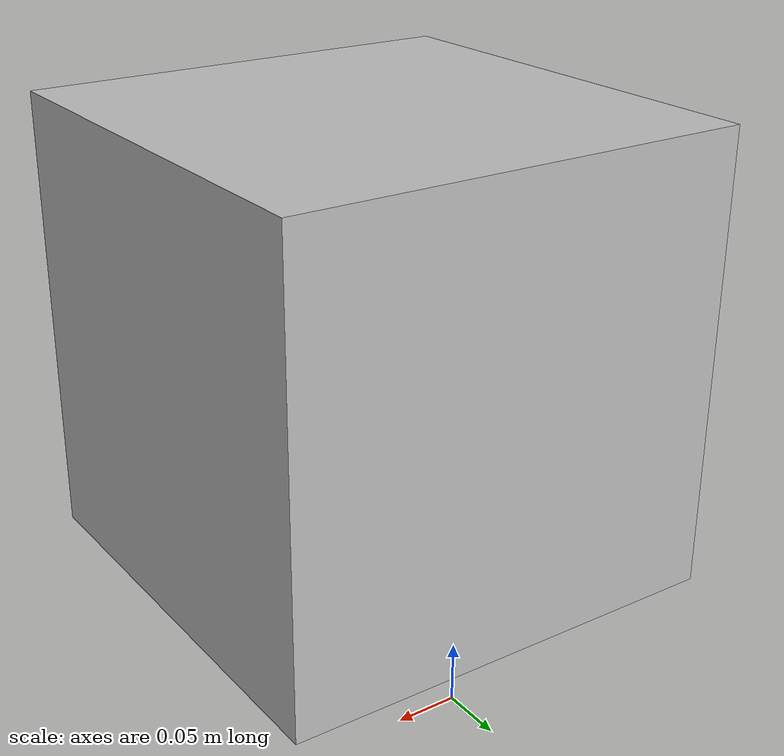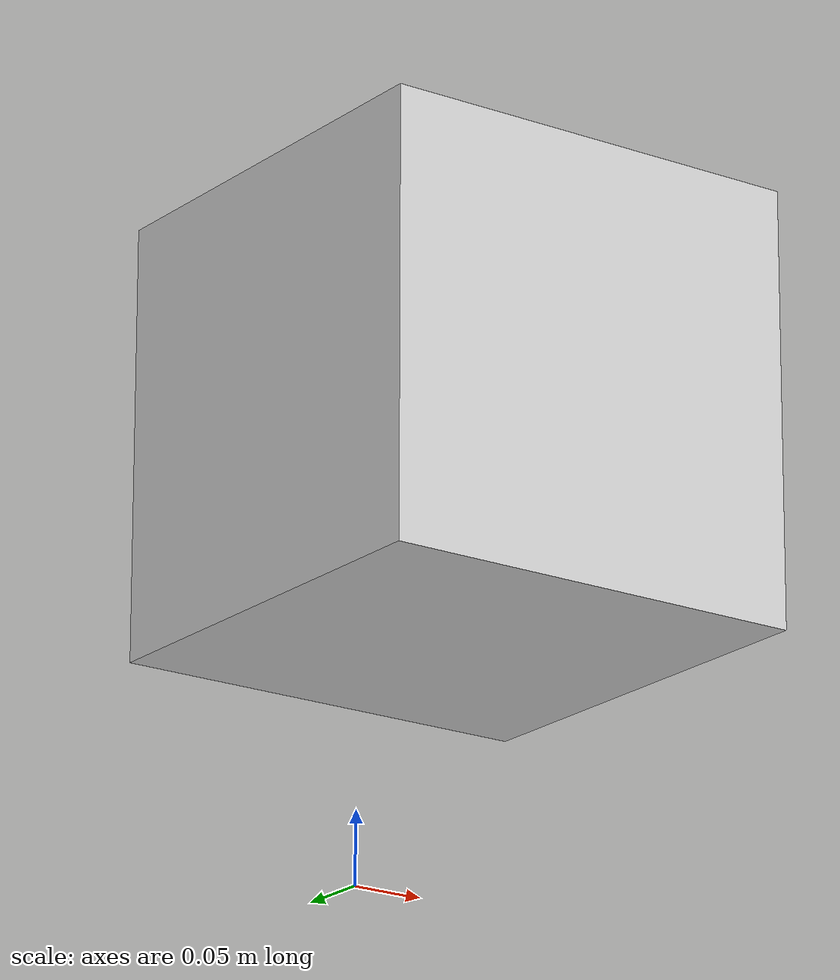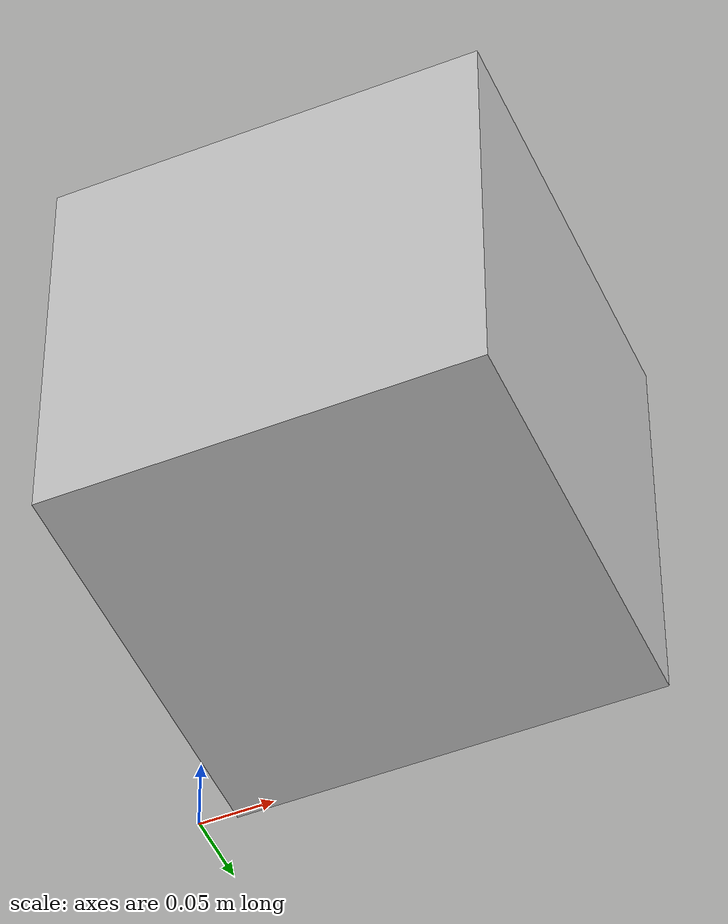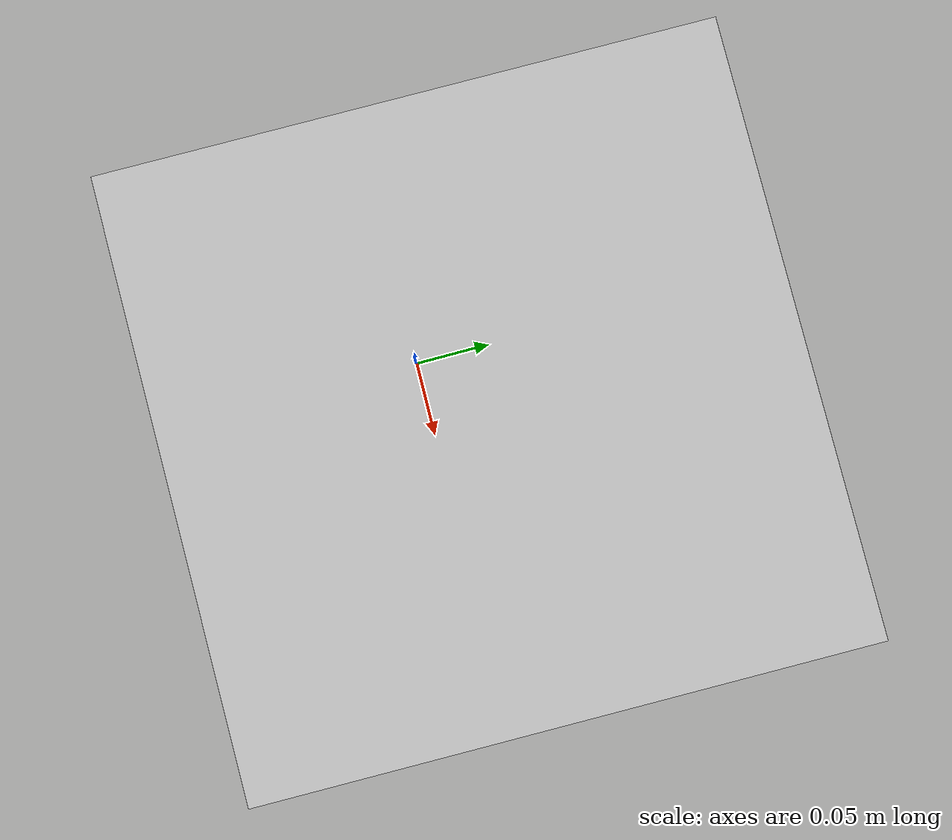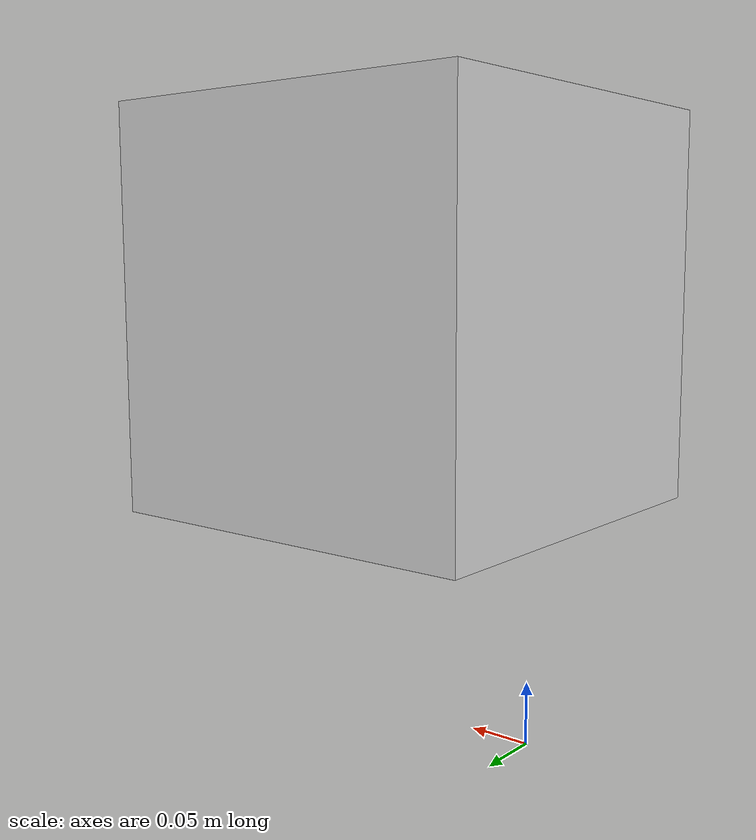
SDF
<?xml version="1.0" ?>
<sdf version="1.6">
  <model name="plastic_block3">
    <!-- dynamic, not static -->
    <static>false</static>
    <pose>0  0  0.2  0  0    0</pose>

    <link name="new_link">
      <inertial>
        <mass>0.5</mass>
        <inertia>
          <ixx>0.0052</ixx><iyy>0.0052</iyy><izz>0.0052</izz>
          <ixy>0</ixy><ixz>0</ixz><iyz>0</iyz>
        </inertia>
      </inertial>
      <collision name="collision">
        <geometry>
          <mesh>
            <scale>0.2 0.2 0.2</scale>
            <uri>model://plastic_block3/meshes/plastic_block.stl</uri>
          </mesh>
        </geometry>
        <surface>
          <friction>
            <ode><mu>1.2</mu><mu2>1.2</mu2></ode>
          </friction>
        </surface>
      </collision>
      <visual name="visual">
        <geometry>
          <mesh>
            <scale>0.2 0.2 0.2</scale>
            <uri>model://plastic_block3/meshes/plastic_block.dae</uri>
          </mesh>
        </geometry>
      </visual>
    </link>
  </model>
</sdf>
